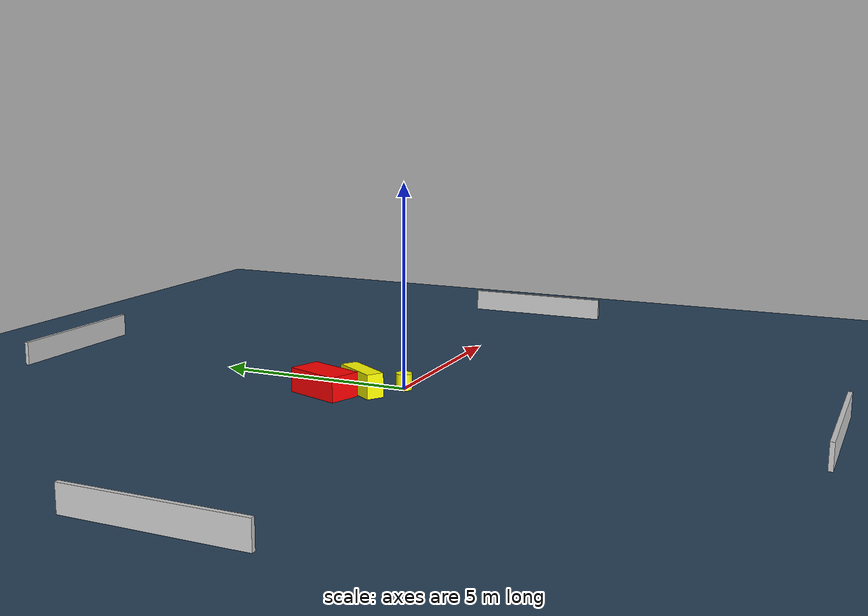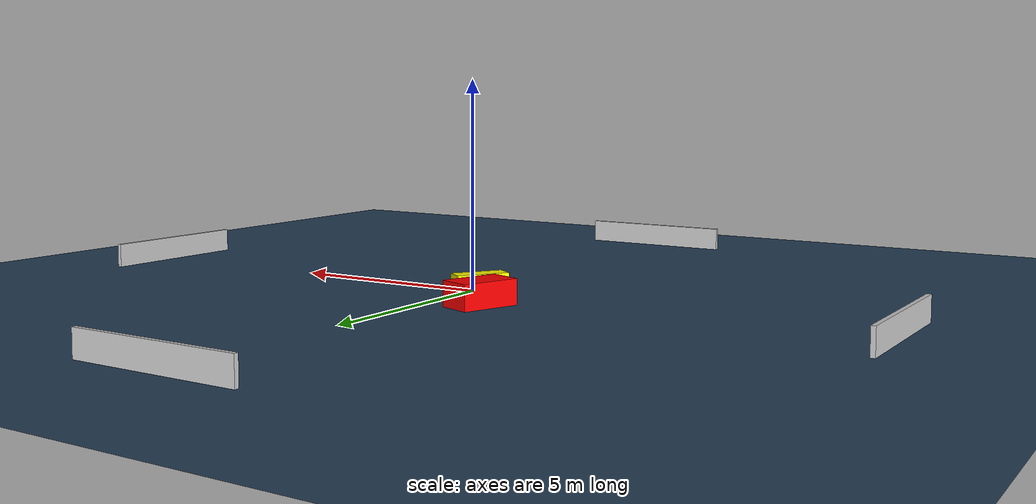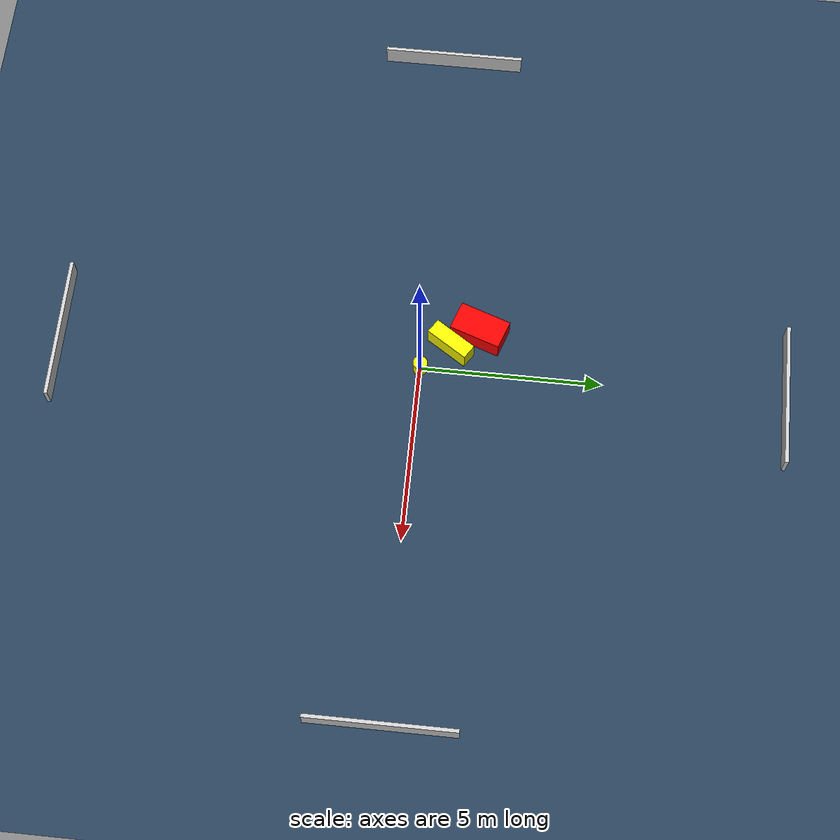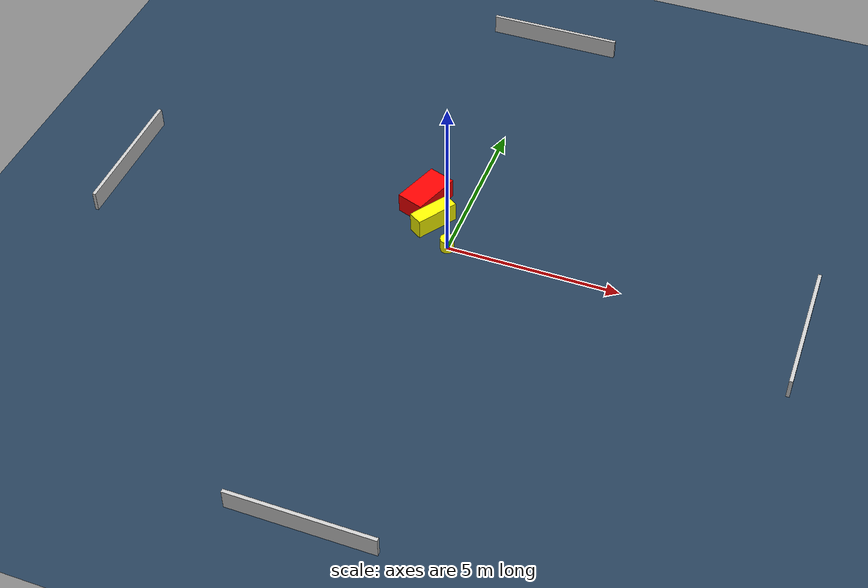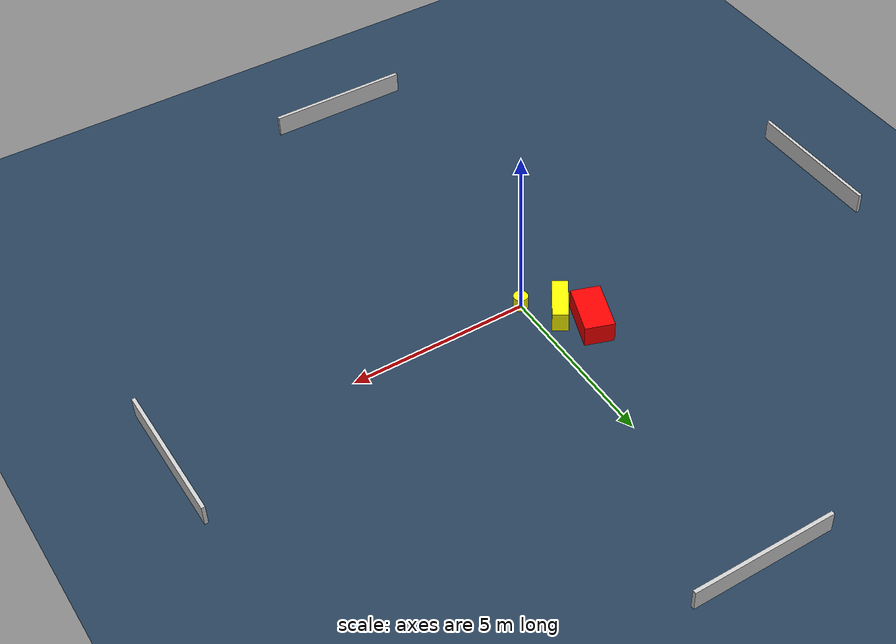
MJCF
<?xml version="1.0" ?>
<mujoco model="generated_environment">
  <option timestep="0.01" integrator="RK4" cone="elliptic"/>
  <default>
    <geom density="1"/>
  </default>
  <asset>
    <texture builtin="gradient" height="3072" name="skybox" rgb1="0.3 0.5 0.7" rgb2="0 0 0" type="skybox" width="512"/>
    <texture builtin="checker" height="300" name="groundplane" rgb1="0.2 0.3 0.4" rgb2="0.1 0.2 0.3" type="2d" width="300"/>
    <material name="groundplane" reflectance="0.2" texrepeat="5 5" texture="groundplane"/>
  </asset>
  <worldbody>
    <light dir="0 0 -1" directional="true" pos="0 0 1.5"/>
    <geom condim="3" friction="0.5 0.005 0.001" material="groundplane" name="floor" pos="0 0 0" size="0 0 0.05" type="plane"/>
    <body name="walls">
      <geom name="wall_1" condim="4" pos="-10.0 0.0 0.3" rgba="0.800000011920929 0.800000011920929 0.800000011920929 1.0" size="0.05 2.0 0.3" type="box"/>
      <geom name="wall_2" condim="4" pos="10.0 0.0 0.3" rgba="0.800000011920929 0.800000011920929 0.800000011920929 1.0" size="0.05 2.0 0.3" type="box"/>
      <geom name="wall_3" condim="4" pos="0.0 -10.0 0.3" rgba="0.800000011920929 0.800000011920929 0.800000011920929 1.0" size="2.0 0.05 0.3" type="box"/>
      <geom name="wall_4" condim="4" pos="0.0 10.0 0.3" rgba="0.800000011920929 0.800000011920929 0.800000011920929 1.0" size="2.0 0.05 0.3" type="box"/>
    </body>
    <body name="robot">
      <joint name="joint_x" type="slide" pos="0 0 0" axis="1 0 0"/>
      <joint name="joint_y" type="slide" pos="0 0 0" axis="0 1 0"/>
      <geom name="robot" type="cylinder" pos="0.0 0.0 0.2" size="0.2 0.2 0.0" mass="5.0" friction="1.0 0.005 0.0001" condim="4" rgba="1.0 1.0 0.0 1.0"/>
    </body>
    <body name="obstacle_1_movable">
      <geom name="obstacle_1_movable" condim="4" pos="-0.7148267080504719 0.782269267421339 0.3" euler="0 0 56.68007749928637" friction="0.0 0.005 0.001" rgba="1.0 1.0 0.0 1.0" size="0.6357380259313723 0.2184329645338282 0.3" type="box" mass="0.1"/>
      <joint type="free"/>
    </body>
    <body name="obstacle_2_static">
      <geom name="obstacle_2_static" condim="4" pos="-1.213305082312931 1.5366850643184604 0.3" euler="0 0 250.61187319200238" friction="0.0 0.005 0.001" rgba="1.0 0.0 0.0 1.0" size="0.7248560331652609 0.40566993701877346 0.3" type="box"/>
    </body>
  </worldbody>
  <actuator>
    <motor name="actuator_x" joint="joint_x" gear="1" ctrlrange="-1 1"/>
    <motor name="actuator_y" joint="joint_y" gear="1" ctrlrange="-1 1"/>
  </actuator>
</mujoco>
